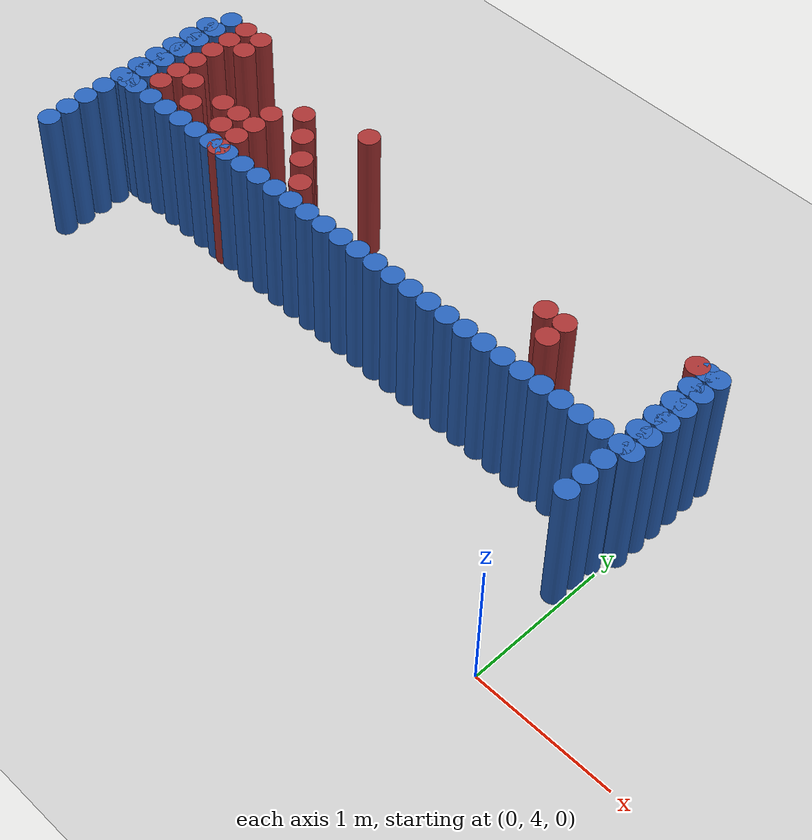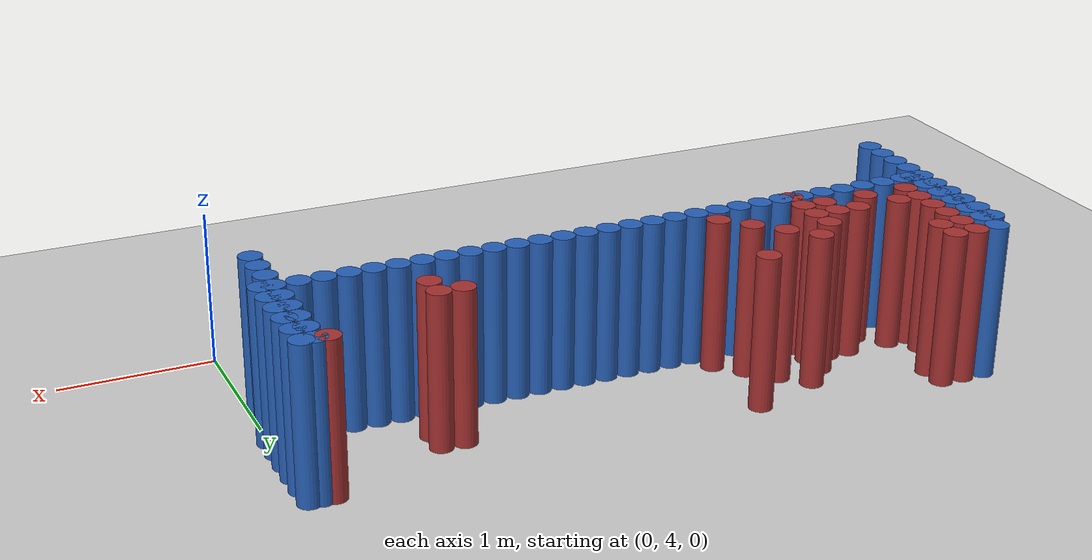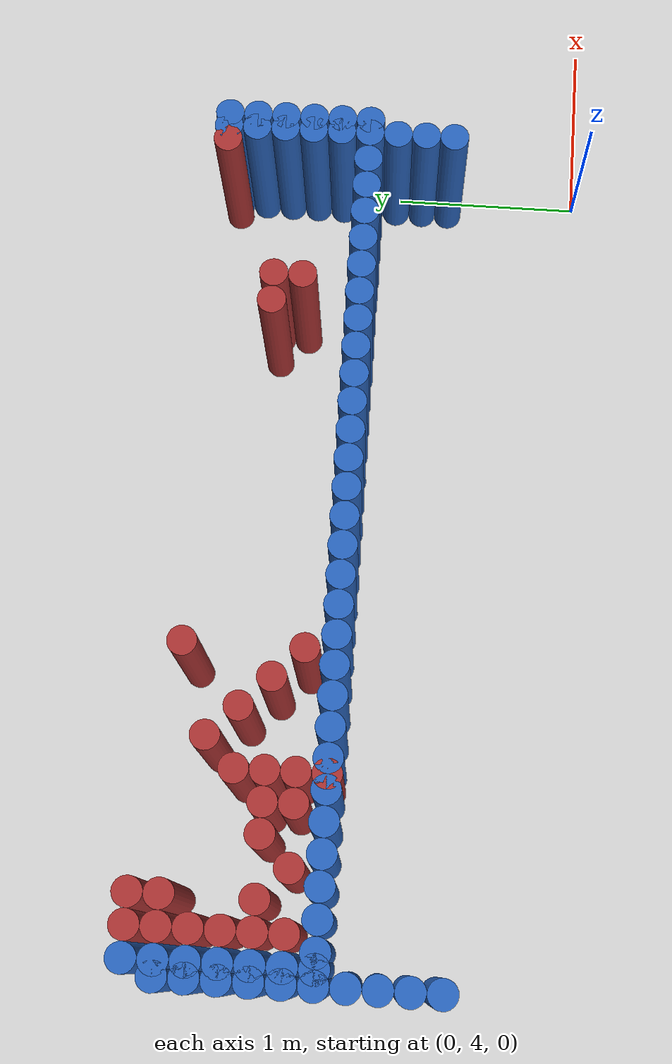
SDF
<sdf version="1.6">
 <world name="barn_world">
  <model name="ground_plane">
   <static>1</static>
   <link name="link">
    <collision name="collision">
     <geometry><plane><normal>0 0 1</normal><size>100 100</size></plane></geometry>
    </collision>
    <visual name="visual">
     <geometry><plane><normal>0 0 1</normal><size>100 100</size></plane></geometry>
     <material>
      <script><uri>file://media/materials/scripts/gazebo.material</uri><name>Gazebo/Grey</name></script>
     </material>
    </visual>
   </link>
  </model>
  <model name="unit_cylinder_89">
   <static>1</static>
   <pose>-4.4250 4.5750 0.5 0 0 0</pose>
   <link name="link">
    <collision name="collision">
     <geometry><cylinder><radius>0.075</radius><length>1</length></cylinder></geometry>
    </collision>
    <visual name="visual">
     <geometry><cylinder><radius>0.075</radius><length>1</length></cylinder></geometry>
     <material><ambient>0.152 0.379 0.72 1</ambient><diffuse>0.152 0.379 0.72 1</diffuse></material>
    </visual>
   </link>
  </model>
  <model name="unit_cylinder_90">
   <static>1</static>
   <pose>-0.0750 4.7250 0.5 0 0 0</pose>
   <link name="link">
    <collision name="collision">
     <geometry><cylinder><radius>0.075</radius><length>1</length></cylinder></geometry>
    </collision>
    <visual name="visual">
     <geometry><cylinder><radius>0.075</radius><length>1</length></cylinder></geometry>
     <material><ambient>0.152 0.379 0.72 1</ambient><diffuse>0.152 0.379 0.72 1</diffuse></material>
    </visual>
   </link>
  </model>
  <model name="unit_cylinder_91">
   <static>1</static>
   <pose>-4.4250 4.7250 0.5 0 0 0</pose>
   <link name="link">
    <collision name="collision">
     <geometry><cylinder><radius>0.075</radius><length>1</length></cylinder></geometry>
    </collision>
    <visual name="visual">
     <geometry><cylinder><radius>0.075</radius><length>1</length></cylinder></geometry>
     <material><ambient>0.152 0.379 0.72 1</ambient><diffuse>0.152 0.379 0.72 1</diffuse></material>
    </visual>
   </link>
  </model>
  <model name="unit_cylinder_92">
   <static>1</static>
   <pose>-0.0750 4.8750 0.5 0 0 0</pose>
   <link name="link">
    <collision name="collision">
     <geometry><cylinder><radius>0.075</radius><length>1</length></cylinder></geometry>
    </collision>
    <visual name="visual">
     <geometry><cylinder><radius>0.075</radius><length>1</length></cylinder></geometry>
     <material><ambient>0.152 0.379 0.72 1</ambient><diffuse>0.152 0.379 0.72 1</diffuse></material>
    </visual>
   </link>
  </model>
  <model name="unit_cylinder_93">
   <static>1</static>
   <pose>-4.4250 4.8750 0.5 0 0 0</pose>
   <link name="link">
    <collision name="collision">
     <geometry><cylinder><radius>0.075</radius><length>1</length></cylinder></geometry>
    </collision>
    <visual name="visual">
     <geometry><cylinder><radius>0.075</radius><length>1</length></cylinder></geometry>
     <material><ambient>0.152 0.379 0.72 1</ambient><diffuse>0.152 0.379 0.72 1</diffuse></material>
    </visual>
   </link>
  </model>
  <model name="unit_cylinder_94">
   <static>1</static>
   <pose>-0.0750 5.0250 0.5 0 0 0</pose>
   <link name="link">
    <collision name="collision">
     <geometry><cylinder><radius>0.075</radius><length>1</length></cylinder></geometry>
    </collision>
    <visual name="visual">
     <geometry><cylinder><radius>0.075</radius><length>1</length></cylinder></geometry>
     <material><ambient>0.152 0.379 0.72 1</ambient><diffuse>0.152 0.379 0.72 1</diffuse></material>
    </visual>
   </link>
  </model>
  <model name="unit_cylinder_95">
   <static>1</static>
   <pose>-4.4250 5.0250 0.5 0 0 0</pose>
   <link name="link">
    <collision name="collision">
     <geometry><cylinder><radius>0.075</radius><length>1</length></cylinder></geometry>
    </collision>
    <visual name="visual">
     <geometry><cylinder><radius>0.075</radius><length>1</length></cylinder></geometry>
     <material><ambient>0.152 0.379 0.72 1</ambient><diffuse>0.152 0.379 0.72 1</diffuse></material>
    </visual>
   </link>
  </model>
  <model name="unit_cylinder_96">
   <static>1</static>
   <pose>-0.0750 5.1750 0.5 0 0 0</pose>
   <link name="link">
    <collision name="collision">
     <geometry><cylinder><radius>0.075</radius><length>1</length></cylinder></geometry>
    </collision>
    <visual name="visual">
     <geometry><cylinder><radius>0.075</radius><length>1</length></cylinder></geometry>
     <material><ambient>0.152 0.379 0.72 1</ambient><diffuse>0.152 0.379 0.72 1</diffuse></material>
    </visual>
   </link>
  </model>
  <model name="unit_cylinder_97">
   <static>1</static>
   <pose>-0.2250 5.1750 0.5 0 0 0</pose>
   <link name="link">
    <collision name="collision">
     <geometry><cylinder><radius>0.075</radius><length>1</length></cylinder></geometry>
    </collision>
    <visual name="visual">
     <geometry><cylinder><radius>0.075</radius><length>1</length></cylinder></geometry>
     <material><ambient>0.152 0.379 0.72 1</ambient><diffuse>0.152 0.379 0.72 1</diffuse></material>
    </visual>
   </link>
  </model>
  <model name="unit_cylinder_98">
   <static>1</static>
   <pose>-0.3750 5.1750 0.5 0 0 0</pose>
   <link name="link">
    <collision name="collision">
     <geometry><cylinder><radius>0.075</radius><length>1</length></cylinder></geometry>
    </collision>
    <visual name="visual">
     <geometry><cylinder><radius>0.075</radius><length>1</length></cylinder></geometry>
     <material><ambient>0.152 0.379 0.72 1</ambient><diffuse>0.152 0.379 0.72 1</diffuse></material>
    </visual>
   </link>
  </model>
  <model name="unit_cylinder_99">
   <static>1</static>
   <pose>-0.5250 5.1750 0.5 0 0 0</pose>
   <link name="link">
    <collision name="collision">
     <geometry><cylinder><radius>0.075</radius><length>1</length></cylinder></geometry>
    </collision>
    <visual name="visual">
     <geometry><cylinder><radius>0.075</radius><length>1</length></cylinder></geometry>
     <material><ambient>0.152 0.379 0.72 1</ambient><diffuse>0.152 0.379 0.72 1</diffuse></material>
    </visual>
   </link>
  </model>
  <model name="unit_cylinder_100">
   <static>1</static>
   <pose>-0.6750 5.1750 0.5 0 0 0</pose>
   <link name="link">
    <collision name="collision">
     <geometry><cylinder><radius>0.075</radius><length>1</length></cylinder></geometry>
    </collision>
    <visual name="visual">
     <geometry><cylinder><radius>0.075</radius><length>1</length></cylinder></geometry>
     <material><ambient>0.152 0.379 0.72 1</ambient><diffuse>0.152 0.379 0.72 1</diffuse></material>
    </visual>
   </link>
  </model>
  <model name="unit_cylinder_101">
   <static>1</static>
   <pose>-0.8250 5.1750 0.5 0 0 0</pose>
   <link name="link">
    <collision name="collision">
     <geometry><cylinder><radius>0.075</radius><length>1</length></cylinder></geometry>
    </collision>
    <visual name="visual">
     <geometry><cylinder><radius>0.075</radius><length>1</length></cylinder></geometry>
     <material><ambient>0.152 0.379 0.72 1</ambient><diffuse>0.152 0.379 0.72 1</diffuse></material>
    </visual>
   </link>
  </model>
  <model name="unit_cylinder_102">
   <static>1</static>
   <pose>-0.9750 5.1750 0.5 0 0 0</pose>
   <link name="link">
    <collision name="collision">
     <geometry><cylinder><radius>0.075</radius><length>1</length></cylinder></geometry>
    </collision>
    <visual name="visual">
     <geometry><cylinder><radius>0.075</radius><length>1</length></cylinder></geometry>
     <material><ambient>0.152 0.379 0.72 1</ambient><diffuse>0.152 0.379 0.72 1</diffuse></material>
    </visual>
   </link>
  </model>
  <model name="unit_cylinder_103">
   <static>1</static>
   <pose>-1.1250 5.1750 0.5 0 0 0</pose>
   <link name="link">
    <collision name="collision">
     <geometry><cylinder><radius>0.075</radius><length>1</length></cylinder></geometry>
    </collision>
    <visual name="visual">
     <geometry><cylinder><radius>0.075</radius><length>1</length></cylinder></geometry>
     <material><ambient>0.152 0.379 0.72 1</ambient><diffuse>0.152 0.379 0.72 1</diffuse></material>
    </visual>
   </link>
  </model>
  <model name="unit_cylinder_104">
   <static>1</static>
   <pose>-1.2750 5.1750 0.5 0 0 0</pose>
   <link name="link">
    <collision name="collision">
     <geometry><cylinder><radius>0.075</radius><length>1</length></cylinder></geometry>
    </collision>
    <visual name="visual">
     <geometry><cylinder><radius>0.075</radius><length>1</length></cylinder></geometry>
     <material><ambient>0.152 0.379 0.72 1</ambient><diffuse>0.152 0.379 0.72 1</diffuse></material>
    </visual>
   </link>
  </model>
  <model name="unit_cylinder_105">
   <static>1</static>
   <pose>-1.4250 5.1750 0.5 0 0 0</pose>
   <link name="link">
    <collision name="collision">
     <geometry><cylinder><radius>0.075</radius><length>1</length></cylinder></geometry>
    </collision>
    <visual name="visual">
     <geometry><cylinder><radius>0.075</radius><length>1</length></cylinder></geometry>
     <material><ambient>0.152 0.379 0.72 1</ambient><diffuse>0.152 0.379 0.72 1</diffuse></material>
    </visual>
   </link>
  </model>
  <model name="unit_cylinder_106">
   <static>1</static>
   <pose>-1.5750 5.1750 0.5 0 0 0</pose>
   <link name="link">
    <collision name="collision">
     <geometry><cylinder><radius>0.075</radius><length>1</length></cylinder></geometry>
    </collision>
    <visual name="visual">
     <geometry><cylinder><radius>0.075</radius><length>1</length></cylinder></geometry>
     <material><ambient>0.152 0.379 0.72 1</ambient><diffuse>0.152 0.379 0.72 1</diffuse></material>
    </visual>
   </link>
  </model>
  <model name="unit_cylinder_107">
   <static>1</static>
   <pose>-1.7250 5.1750 0.5 0 0 0</pose>
   <link name="link">
    <collision name="collision">
     <geometry><cylinder><radius>0.075</radius><length>1</length></cylinder></geometry>
    </collision>
    <visual name="visual">
     <geometry><cylinder><radius>0.075</radius><length>1</length></cylinder></geometry>
     <material><ambient>0.152 0.379 0.72 1</ambient><diffuse>0.152 0.379 0.72 1</diffuse></material>
    </visual>
   </link>
  </model>
  <model name="unit_cylinder_108">
   <static>1</static>
   <pose>-1.8750 5.1750 0.5 0 0 0</pose>
   <link name="link">
    <collision name="collision">
     <geometry><cylinder><radius>0.075</radius><length>1</length></cylinder></geometry>
    </collision>
    <visual name="visual">
     <geometry><cylinder><radius>0.075</radius><length>1</length></cylinder></geometry>
     <material><ambient>0.152 0.379 0.72 1</ambient><diffuse>0.152 0.379 0.72 1</diffuse></material>
    </visual>
   </link>
  </model>
  <model name="unit_cylinder_109">
   <static>1</static>
   <pose>-2.0250 5.1750 0.5 0 0 0</pose>
   <link name="link">
    <collision name="collision">
     <geometry><cylinder><radius>0.075</radius><length>1</length></cylinder></geometry>
    </collision>
    <visual name="visual">
     <geometry><cylinder><radius>0.075</radius><length>1</length></cylinder></geometry>
     <material><ambient>0.152 0.379 0.72 1</ambient><diffuse>0.152 0.379 0.72 1</diffuse></material>
    </visual>
   </link>
  </model>
  <model name="unit_cylinder_110">
   <static>1</static>
   <pose>-2.1750 5.1750 0.5 0 0 0</pose>
   <link name="link">
    <collision name="collision">
     <geometry><cylinder><radius>0.075</radius><length>1</length></cylinder></geometry>
    </collision>
    <visual name="visual">
     <geometry><cylinder><radius>0.075</radius><length>1</length></cylinder></geometry>
     <material><ambient>0.152 0.379 0.72 1</ambient><diffuse>0.152 0.379 0.72 1</diffuse></material>
    </visual>
   </link>
  </model>
  <model name="unit_cylinder_111">
   <static>1</static>
   <pose>-2.3250 5.1750 0.5 0 0 0</pose>
   <link name="link">
    <collision name="collision">
     <geometry><cylinder><radius>0.075</radius><length>1</length></cylinder></geometry>
    </collision>
    <visual name="visual">
     <geometry><cylinder><radius>0.075</radius><length>1</length></cylinder></geometry>
     <material><ambient>0.152 0.379 0.72 1</ambient><diffuse>0.152 0.379 0.72 1</diffuse></material>
    </visual>
   </link>
  </model>
  <model name="unit_cylinder_112">
   <static>1</static>
   <pose>-2.4750 5.1750 0.5 0 0 0</pose>
   <link name="link">
    <collision name="collision">
     <geometry><cylinder><radius>0.075</radius><length>1</length></cylinder></geometry>
    </collision>
    <visual name="visual">
     <geometry><cylinder><radius>0.075</radius><length>1</length></cylinder></geometry>
     <material><ambient>0.152 0.379 0.72 1</ambient><diffuse>0.152 0.379 0.72 1</diffuse></material>
    </visual>
   </link>
  </model>
  <model name="unit_cylinder_113">
   <static>1</static>
   <pose>-2.6250 5.1750 0.5 0 0 0</pose>
   <link name="link">
    <collision name="collision">
     <geometry><cylinder><radius>0.075</radius><length>1</length></cylinder></geometry>
    </collision>
    <visual name="visual">
     <geometry><cylinder><radius>0.075</radius><length>1</length></cylinder></geometry>
     <material><ambient>0.152 0.379 0.72 1</ambient><diffuse>0.152 0.379 0.72 1</diffuse></material>
    </visual>
   </link>
  </model>
  <model name="unit_cylinder_114">
   <static>1</static>
   <pose>-2.7750 5.1750 0.5 0 0 0</pose>
   <link name="link">
    <collision name="collision">
     <geometry><cylinder><radius>0.075</radius><length>1</length></cylinder></geometry>
    </collision>
    <visual name="visual">
     <geometry><cylinder><radius>0.075</radius><length>1</length></cylinder></geometry>
     <material><ambient>0.152 0.379 0.72 1</ambient><diffuse>0.152 0.379 0.72 1</diffuse></material>
    </visual>
   </link>
  </model>
  <model name="unit_cylinder_115">
   <static>1</static>
   <pose>-2.9250 5.1750 0.5 0 0 0</pose>
   <link name="link">
    <collision name="collision">
     <geometry><cylinder><radius>0.075</radius><length>1</length></cylinder></geometry>
    </collision>
    <visual name="visual">
     <geometry><cylinder><radius>0.075</radius><length>1</length></cylinder></geometry>
     <material><ambient>0.152 0.379 0.72 1</ambient><diffuse>0.152 0.379 0.72 1</diffuse></material>
    </visual>
   </link>
  </model>
  <model name="unit_cylinder_116">
   <static>1</static>
   <pose>-3.0750 5.1750 0.5 0 0 0</pose>
   <link name="link">
    <collision name="collision">
     <geometry><cylinder><radius>0.075</radius><length>1</length></cylinder></geometry>
    </collision>
    <visual name="visual">
     <geometry><cylinder><radius>0.075</radius><length>1</length></cylinder></geometry>
     <material><ambient>0.152 0.379 0.72 1</ambient><diffuse>0.152 0.379 0.72 1</diffuse></material>
    </visual>
   </link>
  </model>
  <model name="unit_cylinder_117">
   <static>1</static>
   <pose>-3.2250 5.1750 0.5 0 0 0</pose>
   <link name="link">
    <collision name="collision">
     <geometry><cylinder><radius>0.075</radius><length>1</length></cylinder></geometry>
    </collision>
    <visual name="visual">
     <geometry><cylinder><radius>0.075</radius><length>1</length></cylinder></geometry>
     <material><ambient>0.152 0.379 0.72 1</ambient><diffuse>0.152 0.379 0.72 1</diffuse></material>
    </visual>
   </link>
  </model>
  <model name="unit_cylinder_118">
   <static>1</static>
   <pose>-3.3750 5.1750 0.5 0 0 0</pose>
   <link name="link">
    <collision name="collision">
     <geometry><cylinder><radius>0.075</radius><length>1</length></cylinder></geometry>
    </collision>
    <visual name="visual">
     <geometry><cylinder><radius>0.075</radius><length>1</length></cylinder></geometry>
     <material><ambient>0.152 0.379 0.72 1</ambient><diffuse>0.152 0.379 0.72 1</diffuse></material>
    </visual>
   </link>
  </model>
  <model name="unit_cylinder_119">
   <static>1</static>
   <pose>-3.5250 5.1750 0.5 0 0 0</pose>
   <link name="link">
    <collision name="collision">
     <geometry><cylinder><radius>0.075</radius><length>1</length></cylinder></geometry>
    </collision>
    <visual name="visual">
     <geometry><cylinder><radius>0.075</radius><length>1</length></cylinder></geometry>
     <material><ambient>0.152 0.379 0.72 1</ambient><diffuse>0.152 0.379 0.72 1</diffuse></material>
    </visual>
   </link>
  </model>
  <model name="unit_cylinder_120">
   <static>1</static>
   <pose>-3.6750 5.1750 0.5 0 0 0</pose>
   <link name="link">
    <collision name="collision">
     <geometry><cylinder><radius>0.075</radius><length>1</length></cylinder></geometry>
    </collision>
    <visual name="visual">
     <geometry><cylinder><radius>0.075</radius><length>1</length></cylinder></geometry>
     <material><ambient>0.152 0.379 0.72 1</ambient><diffuse>0.152 0.379 0.72 1</diffuse></material>
    </visual>
   </link>
  </model>
  <model name="unit_cylinder_121">
   <static>1</static>
   <pose>-3.8250 5.1750 0.5 0 0 0</pose>
   <link name="link">
    <collision name="collision">
     <geometry><cylinder><radius>0.075</radius><length>1</length></cylinder></geometry>
    </collision>
    <visual name="visual">
     <geometry><cylinder><radius>0.075</radius><length>1</length></cylinder></geometry>
     <material><ambient>0.152 0.379 0.72 1</ambient><diffuse>0.152 0.379 0.72 1</diffuse></material>
    </visual>
   </link>
  </model>
  <model name="unit_cylinder_122">
   <static>1</static>
   <pose>-3.9750 5.1750 0.5 0 0 0</pose>
   <link name="link">
    <collision name="collision">
     <geometry><cylinder><radius>0.075</radius><length>1</length></cylinder></geometry>
    </collision>
    <visual name="visual">
     <geometry><cylinder><radius>0.075</radius><length>1</length></cylinder></geometry>
     <material><ambient>0.152 0.379 0.72 1</ambient><diffuse>0.152 0.379 0.72 1</diffuse></material>
    </visual>
   </link>
  </model>
  <model name="unit_cylinder_123">
   <static>1</static>
   <pose>-4.1250 5.1750 0.5 0 0 0</pose>
   <link name="link">
    <collision name="collision">
     <geometry><cylinder><radius>0.075</radius><length>1</length></cylinder></geometry>
    </collision>
    <visual name="visual">
     <geometry><cylinder><radius>0.075</radius><length>1</length></cylinder></geometry>
     <material><ambient>0.152 0.379 0.72 1</ambient><diffuse>0.152 0.379 0.72 1</diffuse></material>
    </visual>
   </link>
  </model>
  <model name="unit_cylinder_124">
   <static>1</static>
   <pose>-4.2750 5.1750 0.5 0 0 0</pose>
   <link name="link">
    <collision name="collision">
     <geometry><cylinder><radius>0.075</radius><length>1</length></cylinder></geometry>
    </collision>
    <visual name="visual">
     <geometry><cylinder><radius>0.075</radius><length>1</length></cylinder></geometry>
     <material><ambient>0.152 0.379 0.72 1</ambient><diffuse>0.152 0.379 0.72 1</diffuse></material>
    </visual>
   </link>
  </model>
  <model name="unit_cylinder_125">
   <static>1</static>
   <pose>-4.4250 5.1750 0.5 0 0 0</pose>
   <link name="link">
    <collision name="collision">
     <geometry><cylinder><radius>0.075</radius><length>1</length></cylinder></geometry>
    </collision>
    <visual name="visual">
     <geometry><cylinder><radius>0.075</radius><length>1</length></cylinder></geometry>
     <material><ambient>0.152 0.379 0.72 1</ambient><diffuse>0.152 0.379 0.72 1</diffuse></material>
    </visual>
   </link>
  </model>
  <model name="unit_cylinder_126">
   <static>1</static>
   <pose>-4.3500 5.1750 0.5 0 0 0</pose>
   <link name="link">
    <collision name="collision">
     <geometry><cylinder><radius>0.075</radius><length>1</length></cylinder></geometry>
    </collision>
    <visual name="visual">
     <geometry><cylinder><radius>0.075</radius><length>1</length></cylinder></geometry>
     <material><ambient>0.152 0.379 0.72 1</ambient><diffuse>0.152 0.379 0.72 1</diffuse></material>
    </visual>
   </link>
  </model>
  <model name="unit_cylinder_127">
   <static>1</static>
   <pose>-4.3500 5.3250 0.5 0 0 0</pose>
   <link name="link">
    <collision name="collision">
     <geometry><cylinder><radius>0.075</radius><length>1</length></cylinder></geometry>
    </collision>
    <visual name="visual">
     <geometry><cylinder><radius>0.075</radius><length>1</length></cylinder></geometry>
     <material><ambient>0.152 0.379 0.72 1</ambient><diffuse>0.152 0.379 0.72 1</diffuse></material>
    </visual>
   </link>
  </model>
  <model name="unit_cylinder_128">
   <static>1</static>
   <pose>-4.3500 5.4750 0.5 0 0 0</pose>
   <link name="link">
    <collision name="collision">
     <geometry><cylinder><radius>0.075</radius><length>1</length></cylinder></geometry>
    </collision>
    <visual name="visual">
     <geometry><cylinder><radius>0.075</radius><length>1</length></cylinder></geometry>
     <material><ambient>0.152 0.379 0.72 1</ambient><diffuse>0.152 0.379 0.72 1</diffuse></material>
    </visual>
   </link>
  </model>
  <model name="unit_cylinder_129">
   <static>1</static>
   <pose>-4.3500 5.6250 0.5 0 0 0</pose>
   <link name="link">
    <collision name="collision">
     <geometry><cylinder><radius>0.075</radius><length>1</length></cylinder></geometry>
    </collision>
    <visual name="visual">
     <geometry><cylinder><radius>0.075</radius><length>1</length></cylinder></geometry>
     <material><ambient>0.152 0.379 0.72 1</ambient><diffuse>0.152 0.379 0.72 1</diffuse></material>
    </visual>
   </link>
  </model>
  <model name="unit_cylinder_130">
   <static>1</static>
   <pose>-4.3500 5.7750 0.5 0 0 0</pose>
   <link name="link">
    <collision name="collision">
     <geometry><cylinder><radius>0.075</radius><length>1</length></cylinder></geometry>
    </collision>
    <visual name="visual">
     <geometry><cylinder><radius>0.075</radius><length>1</length></cylinder></geometry>
     <material><ambient>0.152 0.379 0.72 1</ambient><diffuse>0.152 0.379 0.72 1</diffuse></material>
    </visual>
   </link>
  </model>
  <model name="unit_cylinder_131">
   <static>1</static>
   <pose>-4.3500 5.9250 0.5 0 0 0</pose>
   <link name="link">
    <collision name="collision">
     <geometry><cylinder><radius>0.075</radius><length>1</length></cylinder></geometry>
    </collision>
    <visual name="visual">
     <geometry><cylinder><radius>0.075</radius><length>1</length></cylinder></geometry>
     <material><ambient>0.152 0.379 0.72 1</ambient><diffuse>0.152 0.379 0.72 1</diffuse></material>
    </visual>
   </link>
  </model>
  <model name="unit_cylinder_132">
   <static>1</static>
   <pose>-4.3500 6.0750 0.5 0 0 0</pose>
   <link name="link">
    <collision name="collision">
     <geometry><cylinder><radius>0.075</radius><length>1</length></cylinder></geometry>
    </collision>
    <visual name="visual">
     <geometry><cylinder><radius>0.075</radius><length>1</length></cylinder></geometry>
     <material><ambient>0.152 0.379 0.72 1</ambient><diffuse>0.152 0.379 0.72 1</diffuse></material>
    </visual>
   </link>
  </model>
  <model name="unit_cylinder_156">
   <static>1</static>
   <pose>-4.2000 5.3250 0.5 0 0 0</pose>
   <link name="link">
    <collision name="collision">
     <geometry><cylinder><radius>0.075</radius><length>1</length></cylinder></geometry>
    </collision>
    <visual name="visual">
     <geometry><cylinder><radius>0.075</radius><length>1</length></cylinder></geometry>
     <material><ambient>0.648 0.192 0.192 1</ambient><diffuse>0.648 0.192 0.192 1</diffuse></material>
    </visual>
   </link>
  </model>
  <model name="unit_cylinder_157">
   <static>1</static>
   <pose>-4.2000 5.4750 0.5 0 0 0</pose>
   <link name="link">
    <collision name="collision">
     <geometry><cylinder><radius>0.075</radius><length>1</length></cylinder></geometry>
    </collision>
    <visual name="visual">
     <geometry><cylinder><radius>0.075</radius><length>1</length></cylinder></geometry>
     <material><ambient>0.648 0.192 0.192 1</ambient><diffuse>0.648 0.192 0.192 1</diffuse></material>
    </visual>
   </link>
  </model>
  <model name="unit_cylinder_158">
   <static>1</static>
   <pose>-4.2000 5.6250 0.5 0 0 0</pose>
   <link name="link">
    <collision name="collision">
     <geometry><cylinder><radius>0.075</radius><length>1</length></cylinder></geometry>
    </collision>
    <visual name="visual">
     <geometry><cylinder><radius>0.075</radius><length>1</length></cylinder></geometry>
     <material><ambient>0.648 0.192 0.192 1</ambient><diffuse>0.648 0.192 0.192 1</diffuse></material>
    </visual>
   </link>
  </model>
  <model name="unit_cylinder_159">
   <static>1</static>
   <pose>-4.2000 5.7750 0.5 0 0 0</pose>
   <link name="link">
    <collision name="collision">
     <geometry><cylinder><radius>0.075</radius><length>1</length></cylinder></geometry>
    </collision>
    <visual name="visual">
     <geometry><cylinder><radius>0.075</radius><length>1</length></cylinder></geometry>
     <material><ambient>0.648 0.192 0.192 1</ambient><diffuse>0.648 0.192 0.192 1</diffuse></material>
    </visual>
   </link>
  </model>
  <model name="unit_cylinder_160">
   <static>1</static>
   <pose>-4.2000 5.9250 0.5 0 0 0</pose>
   <link name="link">
    <collision name="collision">
     <geometry><cylinder><radius>0.075</radius><length>1</length></cylinder></geometry>
    </collision>
    <visual name="visual">
     <geometry><cylinder><radius>0.075</radius><length>1</length></cylinder></geometry>
     <material><ambient>0.648 0.192 0.192 1</ambient><diffuse>0.648 0.192 0.192 1</diffuse></material>
    </visual>
   </link>
  </model>
  <model name="unit_cylinder_161">
   <static>1</static>
   <pose>-4.2000 6.0750 0.5 0 0 0</pose>
   <link name="link">
    <collision name="collision">
     <geometry><cylinder><radius>0.075</radius><length>1</length></cylinder></geometry>
    </collision>
    <visual name="visual">
     <geometry><cylinder><radius>0.075</radius><length>1</length></cylinder></geometry>
     <material><ambient>0.648 0.192 0.192 1</ambient><diffuse>0.648 0.192 0.192 1</diffuse></material>
    </visual>
   </link>
  </model>
  <model name="unit_cylinder_176">
   <static>1</static>
   <pose>-4.0500 5.4750 0.5 0 0 0</pose>
   <link name="link">
    <collision name="collision">
     <geometry><cylinder><radius>0.075</radius><length>1</length></cylinder></geometry>
    </collision>
    <visual name="visual">
     <geometry><cylinder><radius>0.075</radius><length>1</length></cylinder></geometry>
     <material><ambient>0.648 0.192 0.192 1</ambient><diffuse>0.648 0.192 0.192 1</diffuse></material>
    </visual>
   </link>
  </model>
  <model name="unit_cylinder_177">
   <static>1</static>
   <pose>-4.0500 5.9250 0.5 0 0 0</pose>
   <link name="link">
    <collision name="collision">
     <geometry><cylinder><radius>0.075</radius><length>1</length></cylinder></geometry>
    </collision>
    <visual name="visual">
     <geometry><cylinder><radius>0.075</radius><length>1</length></cylinder></geometry>
     <material><ambient>0.648 0.192 0.192 1</ambient><diffuse>0.648 0.192 0.192 1</diffuse></material>
    </visual>
   </link>
  </model>
  <model name="unit_cylinder_178">
   <static>1</static>
   <pose>-4.0500 6.0750 0.5 0 0 0</pose>
   <link name="link">
    <collision name="collision">
     <geometry><cylinder><radius>0.075</radius><length>1</length></cylinder></geometry>
    </collision>
    <visual name="visual">
     <geometry><cylinder><radius>0.075</radius><length>1</length></cylinder></geometry>
     <material><ambient>0.648 0.192 0.192 1</ambient><diffuse>0.648 0.192 0.192 1</diffuse></material>
    </visual>
   </link>
  </model>
  <model name="unit_cylinder_184">
   <static>1</static>
   <pose>-3.9000 5.3250 0.5 0 0 0</pose>
   <link name="link">
    <collision name="collision">
     <geometry><cylinder><radius>0.075</radius><length>1</length></cylinder></geometry>
    </collision>
    <visual name="visual">
     <geometry><cylinder><radius>0.075</radius><length>1</length></cylinder></geometry>
     <material><ambient>0.648 0.192 0.192 1</ambient><diffuse>0.648 0.192 0.192 1</diffuse></material>
    </visual>
   </link>
  </model>
  <model name="unit_cylinder_191">
   <static>1</static>
   <pose>-3.7500 5.4750 0.5 0 0 0</pose>
   <link name="link">
    <collision name="collision">
     <geometry><cylinder><radius>0.075</radius><length>1</length></cylinder></geometry>
    </collision>
    <visual name="visual">
     <geometry><cylinder><radius>0.075</radius><length>1</length></cylinder></geometry>
     <material><ambient>0.648 0.192 0.192 1</ambient><diffuse>0.648 0.192 0.192 1</diffuse></material>
    </visual>
   </link>
  </model>
  <model name="unit_cylinder_199">
   <static>1</static>
   <pose>-3.6000 5.3250 0.5 0 0 0</pose>
   <link name="link">
    <collision name="collision">
     <geometry><cylinder><radius>0.075</radius><length>1</length></cylinder></geometry>
    </collision>
    <visual name="visual">
     <geometry><cylinder><radius>0.075</radius><length>1</length></cylinder></geometry>
     <material><ambient>0.648 0.192 0.192 1</ambient><diffuse>0.648 0.192 0.192 1</diffuse></material>
    </visual>
   </link>
  </model>
  <model name="unit_cylinder_200">
   <static>1</static>
   <pose>-3.6000 5.4750 0.5 0 0 0</pose>
   <link name="link">
    <collision name="collision">
     <geometry><cylinder><radius>0.075</radius><length>1</length></cylinder></geometry>
    </collision>
    <visual name="visual">
     <geometry><cylinder><radius>0.075</radius><length>1</length></cylinder></geometry>
     <material><ambient>0.648 0.192 0.192 1</ambient><diffuse>0.648 0.192 0.192 1</diffuse></material>
    </visual>
   </link>
  </model>
  <model name="unit_cylinder_206">
   <static>1</static>
   <pose>-3.4500 5.1750 0.5 0 0 0</pose>
   <link name="link">
    <collision name="collision">
     <geometry><cylinder><radius>0.075</radius><length>1</length></cylinder></geometry>
    </collision>
    <visual name="visual">
     <geometry><cylinder><radius>0.075</radius><length>1</length></cylinder></geometry>
     <material><ambient>0.648 0.192 0.192 1</ambient><diffuse>0.648 0.192 0.192 1</diffuse></material>
    </visual>
   </link>
  </model>
  <model name="unit_cylinder_207">
   <static>1</static>
   <pose>-3.4500 5.3250 0.5 0 0 0</pose>
   <link name="link">
    <collision name="collision">
     <geometry><cylinder><radius>0.075</radius><length>1</length></cylinder></geometry>
    </collision>
    <visual name="visual">
     <geometry><cylinder><radius>0.075</radius><length>1</length></cylinder></geometry>
     <material><ambient>0.648 0.192 0.192 1</ambient><diffuse>0.648 0.192 0.192 1</diffuse></material>
    </visual>
   </link>
  </model>
  <model name="unit_cylinder_208">
   <static>1</static>
   <pose>-3.4500 5.4750 0.5 0 0 0</pose>
   <link name="link">
    <collision name="collision">
     <geometry><cylinder><radius>0.075</radius><length>1</length></cylinder></geometry>
    </collision>
    <visual name="visual">
     <geometry><cylinder><radius>0.075</radius><length>1</length></cylinder></geometry>
     <material><ambient>0.648 0.192 0.192 1</ambient><diffuse>0.648 0.192 0.192 1</diffuse></material>
    </visual>
   </link>
  </model>
  <model name="unit_cylinder_209">
   <static>1</static>
   <pose>-3.4500 5.6250 0.5 0 0 0</pose>
   <link name="link">
    <collision name="collision">
     <geometry><cylinder><radius>0.075</radius><length>1</length></cylinder></geometry>
    </collision>
    <visual name="visual">
     <geometry><cylinder><radius>0.075</radius><length>1</length></cylinder></geometry>
     <material><ambient>0.648 0.192 0.192 1</ambient><diffuse>0.648 0.192 0.192 1</diffuse></material>
    </visual>
   </link>
  </model>
  <model name="unit_cylinder_215">
   <static>1</static>
   <pose>-3.3000 5.7750 0.5 0 0 0</pose>
   <link name="link">
    <collision name="collision">
     <geometry><cylinder><radius>0.075</radius><length>1</length></cylinder></geometry>
    </collision>
    <visual name="visual">
     <geometry><cylinder><radius>0.075</radius><length>1</length></cylinder></geometry>
     <material><ambient>0.648 0.192 0.192 1</ambient><diffuse>0.648 0.192 0.192 1</diffuse></material>
    </visual>
   </link>
  </model>
  <model name="unit_cylinder_219">
   <static>1</static>
   <pose>-3.1500 5.6250 0.5 0 0 0</pose>
   <link name="link">
    <collision name="collision">
     <geometry><cylinder><radius>0.075</radius><length>1</length></cylinder></geometry>
    </collision>
    <visual name="visual">
     <geometry><cylinder><radius>0.075</radius><length>1</length></cylinder></geometry>
     <material><ambient>0.648 0.192 0.192 1</ambient><diffuse>0.648 0.192 0.192 1</diffuse></material>
    </visual>
   </link>
  </model>
  <model name="unit_cylinder_222">
   <static>1</static>
   <pose>-3.0000 5.4750 0.5 0 0 0</pose>
   <link name="link">
    <collision name="collision">
     <geometry><cylinder><radius>0.075</radius><length>1</length></cylinder></geometry>
    </collision>
    <visual name="visual">
     <geometry><cylinder><radius>0.075</radius><length>1</length></cylinder></geometry>
     <material><ambient>0.648 0.192 0.192 1</ambient><diffuse>0.648 0.192 0.192 1</diffuse></material>
    </visual>
   </link>
  </model>
  <model name="unit_cylinder_223">
   <static>1</static>
   <pose>-2.8500 5.3250 0.5 0 0 0</pose>
   <link name="link">
    <collision name="collision">
     <geometry><cylinder><radius>0.075</radius><length>1</length></cylinder></geometry>
    </collision>
    <visual name="visual">
     <geometry><cylinder><radius>0.075</radius><length>1</length></cylinder></geometry>
     <material><ambient>0.648 0.192 0.192 1</ambient><diffuse>0.648 0.192 0.192 1</diffuse></material>
    </visual>
   </link>
  </model>
  <model name="unit_cylinder_224">
   <static>1</static>
   <pose>-2.8500 5.9250 0.5 0 0 0</pose>
   <link name="link">
    <collision name="collision">
     <geometry><cylinder><radius>0.075</radius><length>1</length></cylinder></geometry>
    </collision>
    <visual name="visual">
     <geometry><cylinder><radius>0.075</radius><length>1</length></cylinder></geometry>
     <material><ambient>0.648 0.192 0.192 1</ambient><diffuse>0.648 0.192 0.192 1</diffuse></material>
    </visual>
   </link>
  </model>
  <model name="unit_cylinder_257">
   <static>1</static>
   <pose>-1.0500 5.6250 0.5 0 0 0</pose>
   <link name="link">
    <collision name="collision">
     <geometry><cylinder><radius>0.075</radius><length>1</length></cylinder></geometry>
    </collision>
    <visual name="visual">
     <geometry><cylinder><radius>0.075</radius><length>1</length></cylinder></geometry>
     <material><ambient>0.648 0.192 0.192 1</ambient><diffuse>0.648 0.192 0.192 1</diffuse></material>
    </visual>
   </link>
  </model>
  <model name="unit_cylinder_269">
   <static>1</static>
   <pose>-0.9000 5.4750 0.5 0 0 0</pose>
   <link name="link">
    <collision name="collision">
     <geometry><cylinder><radius>0.075</radius><length>1</length></cylinder></geometry>
    </collision>
    <visual name="visual">
     <geometry><cylinder><radius>0.075</radius><length>1</length></cylinder></geometry>
     <material><ambient>0.648 0.192 0.192 1</ambient><diffuse>0.648 0.192 0.192 1</diffuse></material>
    </visual>
   </link>
  </model>
  <model name="unit_cylinder_270">
   <static>1</static>
   <pose>-0.9000 5.6250 0.5 0 0 0</pose>
   <link name="link">
    <collision name="collision">
     <geometry><cylinder><radius>0.075</radius><length>1</length></cylinder></geometry>
    </collision>
    <visual name="visual">
     <geometry><cylinder><radius>0.075</radius><length>1</length></cylinder></geometry>
     <material><ambient>0.648 0.192 0.192 1</ambient><diffuse>0.648 0.192 0.192 1</diffuse></material>
    </visual>
   </link>
  </model>
  <model name="unit_cylinder_304">
   <static>1</static>
   <pose>-0.1500 5.9250 0.5 0 0 0</pose>
   <link name="link">
    <collision name="collision">
     <geometry><cylinder><radius>0.075</radius><length>1</length></cylinder></geometry>
    </collision>
    <visual name="visual">
     <geometry><cylinder><radius>0.075</radius><length>1</length></cylinder></geometry>
     <material><ambient>0.648 0.192 0.192 1</ambient><diffuse>0.648 0.192 0.192 1</diffuse></material>
    </visual>
   </link>
  </model>
  <model name="unit_cylinder_325">
   <static>1</static>
   <pose>0.0000 5.1750 0.5 0 0 0</pose>
   <link name="link">
    <collision name="collision">
     <geometry><cylinder><radius>0.075</radius><length>1</length></cylinder></geometry>
    </collision>
    <visual name="visual">
     <geometry><cylinder><radius>0.075</radius><length>1</length></cylinder></geometry>
     <material><ambient>0.152 0.379 0.72 1</ambient><diffuse>0.152 0.379 0.72 1</diffuse></material>
    </visual>
   </link>
  </model>
  <model name="unit_cylinder_326">
   <static>1</static>
   <pose>0.0000 5.3250 0.5 0 0 0</pose>
   <link name="link">
    <collision name="collision">
     <geometry><cylinder><radius>0.075</radius><length>1</length></cylinder></geometry>
    </collision>
    <visual name="visual">
     <geometry><cylinder><radius>0.075</radius><length>1</length></cylinder></geometry>
     <material><ambient>0.152 0.379 0.72 1</ambient><diffuse>0.152 0.379 0.72 1</diffuse></material>
    </visual>
   </link>
  </model>
  <model name="unit_cylinder_327">
   <static>1</static>
   <pose>0.0000 5.4750 0.5 0 0 0</pose>
   <link name="link">
    <collision name="collision">
     <geometry><cylinder><radius>0.075</radius><length>1</length></cylinder></geometry>
    </collision>
    <visual name="visual">
     <geometry><cylinder><radius>0.075</radius><length>1</length></cylinder></geometry>
     <material><ambient>0.152 0.379 0.72 1</ambient><diffuse>0.152 0.379 0.72 1</diffuse></material>
    </visual>
   </link>
  </model>
  <model name="unit_cylinder_328">
   <static>1</static>
   <pose>0.0000 5.6250 0.5 0 0 0</pose>
   <link name="link">
    <collision name="collision">
     <geometry><cylinder><radius>0.075</radius><length>1</length></cylinder></geometry>
    </collision>
    <visual name="visual">
     <geometry><cylinder><radius>0.075</radius><length>1</length></cylinder></geometry>
     <material><ambient>0.152 0.379 0.72 1</ambient><diffuse>0.152 0.379 0.72 1</diffuse></material>
    </visual>
   </link>
  </model>
  <model name="unit_cylinder_329">
   <static>1</static>
   <pose>0.0000 5.7750 0.5 0 0 0</pose>
   <link name="link">
    <collision name="collision">
     <geometry><cylinder><radius>0.075</radius><length>1</length></cylinder></geometry>
    </collision>
    <visual name="visual">
     <geometry><cylinder><radius>0.075</radius><length>1</length></cylinder></geometry>
     <material><ambient>0.152 0.379 0.72 1</ambient><diffuse>0.152 0.379 0.72 1</diffuse></material>
    </visual>
   </link>
  </model>
  <model name="unit_cylinder_330">
   <static>1</static>
   <pose>0.0000 5.9250 0.5 0 0 0</pose>
   <link name="link">
    <collision name="collision">
     <geometry><cylinder><radius>0.075</radius><length>1</length></cylinder></geometry>
    </collision>
    <visual name="visual">
     <geometry><cylinder><radius>0.075</radius><length>1</length></cylinder></geometry>
     <material><ambient>0.152 0.379 0.72 1</ambient><diffuse>0.152 0.379 0.72 1</diffuse></material>
    </visual>
   </link>
  </model>
  <model name="unit_cylinder_385">
   <static>1</static>
   <pose>-0.0750 5.1750 0.5 0 0 0</pose>
   <link name="link">
    <collision name="collision">
     <geometry><cylinder><radius>0.075</radius><length>1</length></cylinder></geometry>
    </collision>
    <visual name="visual">
     <geometry><cylinder><radius>0.075</radius><length>1</length></cylinder></geometry>
     <material><ambient>0.152 0.379 0.72 1</ambient><diffuse>0.152 0.379 0.72 1</diffuse></material>
    </visual>
   </link>
  </model>
  <model name="unit_cylinder_386">
   <static>1</static>
   <pose>-4.4250 5.1750 0.5 0 0 0</pose>
   <link name="link">
    <collision name="collision">
     <geometry><cylinder><radius>0.075</radius><length>1</length></cylinder></geometry>
    </collision>
    <visual name="visual">
     <geometry><cylinder><radius>0.075</radius><length>1</length></cylinder></geometry>
     <material><ambient>0.152 0.379 0.72 1</ambient><diffuse>0.152 0.379 0.72 1</diffuse></material>
    </visual>
   </link>
  </model>
  <model name="unit_cylinder_387">
   <static>1</static>
   <pose>-0.0750 5.3250 0.5 0 0 0</pose>
   <link name="link">
    <collision name="collision">
     <geometry><cylinder><radius>0.075</radius><length>1</length></cylinder></geometry>
    </collision>
    <visual name="visual">
     <geometry><cylinder><radius>0.075</radius><length>1</length></cylinder></geometry>
     <material><ambient>0.152 0.379 0.72 1</ambient><diffuse>0.152 0.379 0.72 1</diffuse></material>
    </visual>
   </link>
  </model>
  <model name="unit_cylinder_388">
   <static>1</static>
   <pose>-4.4250 5.3250 0.5 0 0 0</pose>
   <link name="link">
    <collision name="collision">
     <geometry><cylinder><radius>0.075</radius><length>1</length></cylinder></geometry>
    </collision>
    <visual name="visual">
     <geometry><cylinder><radius>0.075</radius><length>1</length></cylinder></geometry>
     <material><ambient>0.152 0.379 0.72 1</ambient><diffuse>0.152 0.379 0.72 1</diffuse></material>
    </visual>
   </link>
  </model>
  <model name="unit_cylinder_389">
   <static>1</static>
   <pose>-0.0750 5.4750 0.5 0 0 0</pose>
   <link name="link">
    <collision name="collision">
     <geometry><cylinder><radius>0.075</radius><length>1</length></cylinder></geometry>
    </collision>
    <visual name="visual">
     <geometry><cylinder><radius>0.075</radius><length>1</length></cylinder></geometry>
     <material><ambient>0.152 0.379 0.72 1</ambient><diffuse>0.152 0.379 0.72 1</diffuse></material>
    </visual>
   </link>
  </model>
  <model name="unit_cylinder_390">
   <static>1</static>
   <pose>-4.4250 5.4750 0.5 0 0 0</pose>
   <link name="link">
    <collision name="collision">
     <geometry><cylinder><radius>0.075</radius><length>1</length></cylinder></geometry>
    </collision>
    <visual name="visual">
     <geometry><cylinder><radius>0.075</radius><length>1</length></cylinder></geometry>
     <material><ambient>0.152 0.379 0.72 1</ambient><diffuse>0.152 0.379 0.72 1</diffuse></material>
    </visual>
   </link>
  </model>
  <model name="unit_cylinder_391">
   <static>1</static>
   <pose>-0.0750 5.6250 0.5 0 0 0</pose>
   <link name="link">
    <collision name="collision">
     <geometry><cylinder><radius>0.075</radius><length>1</length></cylinder></geometry>
    </collision>
    <visual name="visual">
     <geometry><cylinder><radius>0.075</radius><length>1</length></cylinder></geometry>
     <material><ambient>0.152 0.379 0.72 1</ambient><diffuse>0.152 0.379 0.72 1</diffuse></material>
    </visual>
   </link>
  </model>
  <model name="unit_cylinder_392">
   <static>1</static>
   <pose>-4.4250 5.6250 0.5 0 0 0</pose>
   <link name="link">
    <collision name="collision">
     <geometry><cylinder><radius>0.075</radius><length>1</length></cylinder></geometry>
    </collision>
    <visual name="visual">
     <geometry><cylinder><radius>0.075</radius><length>1</length></cylinder></geometry>
     <material><ambient>0.152 0.379 0.72 1</ambient><diffuse>0.152 0.379 0.72 1</diffuse></material>
    </visual>
   </link>
  </model>
  <model name="unit_cylinder_393">
   <static>1</static>
   <pose>-0.0750 5.7750 0.5 0 0 0</pose>
   <link name="link">
    <collision name="collision">
     <geometry><cylinder><radius>0.075</radius><length>1</length></cylinder></geometry>
    </collision>
    <visual name="visual">
     <geometry><cylinder><radius>0.075</radius><length>1</length></cylinder></geometry>
     <material><ambient>0.152 0.379 0.72 1</ambient><diffuse>0.152 0.379 0.72 1</diffuse></material>
    </visual>
   </link>
  </model>
  <model name="unit_cylinder_394">
   <static>1</static>
   <pose>-4.4250 5.7750 0.5 0 0 0</pose>
   <link name="link">
    <collision name="collision">
     <geometry><cylinder><radius>0.075</radius><length>1</length></cylinder></geometry>
    </collision>
    <visual name="visual">
     <geometry><cylinder><radius>0.075</radius><length>1</length></cylinder></geometry>
     <material><ambient>0.152 0.379 0.72 1</ambient><diffuse>0.152 0.379 0.72 1</diffuse></material>
    </visual>
   </link>
  </model>
  <model name="unit_cylinder_395">
   <static>1</static>
   <pose>-0.0750 5.9250 0.5 0 0 0</pose>
   <link name="link">
    <collision name="collision">
     <geometry><cylinder><radius>0.075</radius><length>1</length></cylinder></geometry>
    </collision>
    <visual name="visual">
     <geometry><cylinder><radius>0.075</radius><length>1</length></cylinder></geometry>
     <material><ambient>0.152 0.379 0.72 1</ambient><diffuse>0.152 0.379 0.72 1</diffuse></material>
    </visual>
   </link>
  </model>
  <model name="unit_cylinder_396">
   <static>1</static>
   <pose>-4.4250 5.9250 0.5 0 0 0</pose>
   <link name="link">
    <collision name="collision">
     <geometry><cylinder><radius>0.075</radius><length>1</length></cylinder></geometry>
    </collision>
    <visual name="visual">
     <geometry><cylinder><radius>0.075</radius><length>1</length></cylinder></geometry>
     <material><ambient>0.152 0.379 0.72 1</ambient><diffuse>0.152 0.379 0.72 1</diffuse></material>
    </visual>
   </link>
  </model>
 </world>
</sdf>
